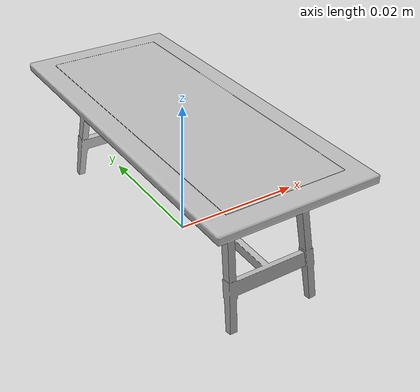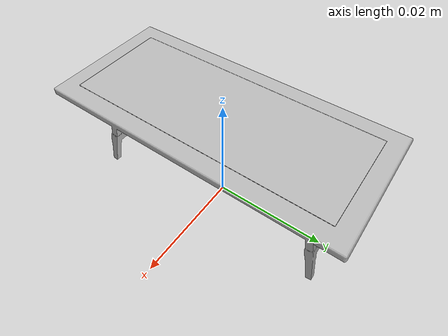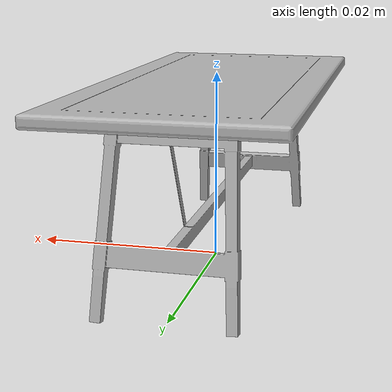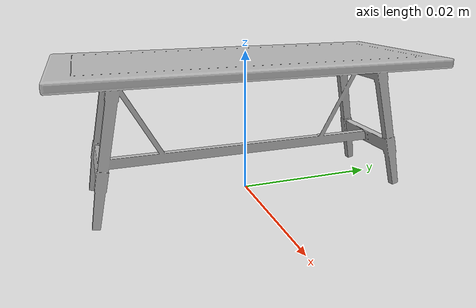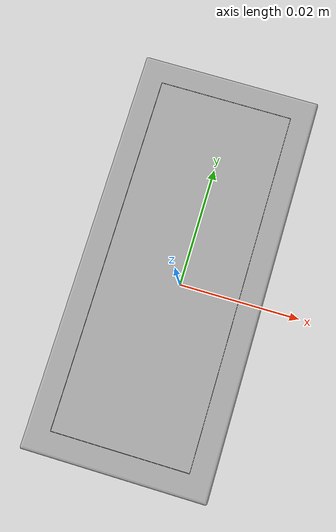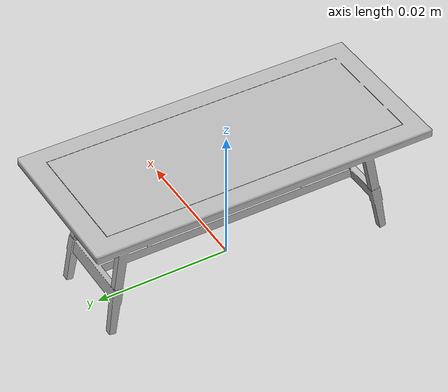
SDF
<?xml version="1.0" ?>
<sdf version="1.6">
  <model name="Tisch3D">
    <static>true</static>
    <link name="link">
      <collision name="collision">
        <geometry>
          <mesh>
            <scale>0.0254 0.0254 0.0254</scale>
            <uri>model://Tisch3D/meshes/model.dae</uri>
          </mesh>
        </geometry>
      </collision>
      <visual name="visual">
        <geometry>
          <mesh>
            <scale>0.0254 0.0254 0.0254</scale>
            <uri>model://Tisch3D/meshes/model.dae</uri>
          </mesh>
        </geometry>
      </visual>
    </link>
  </model>
</sdf>
